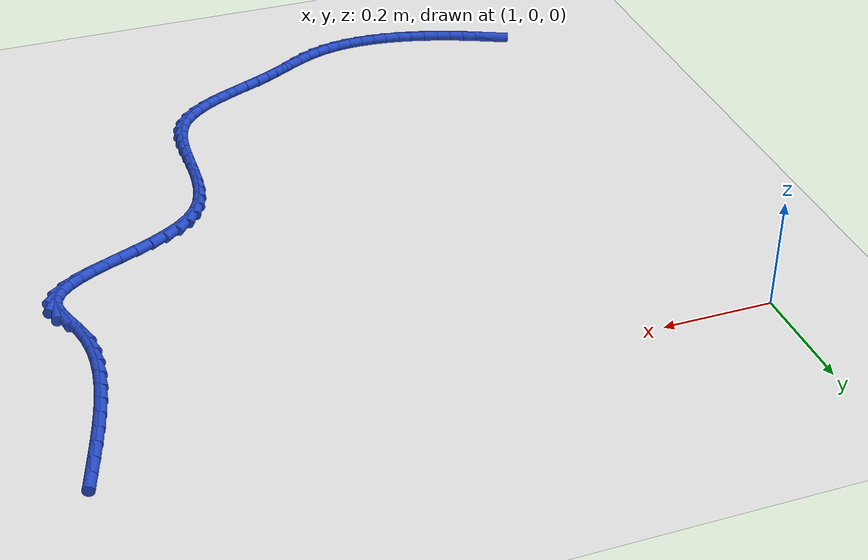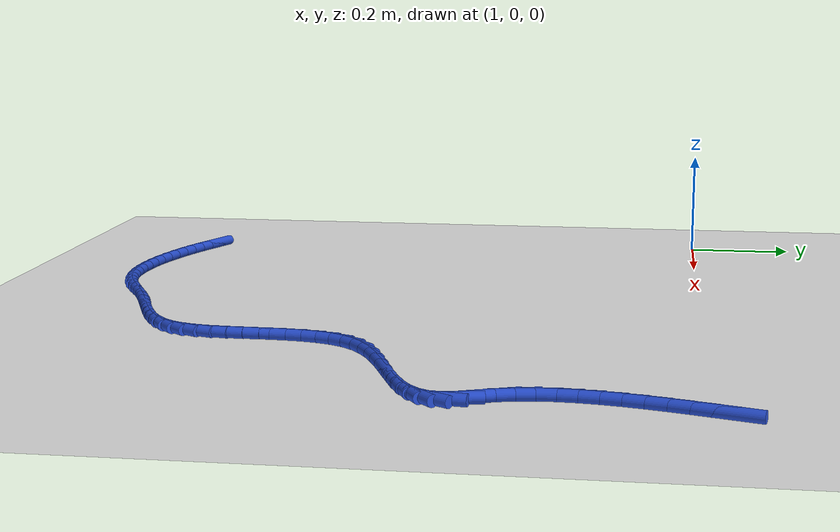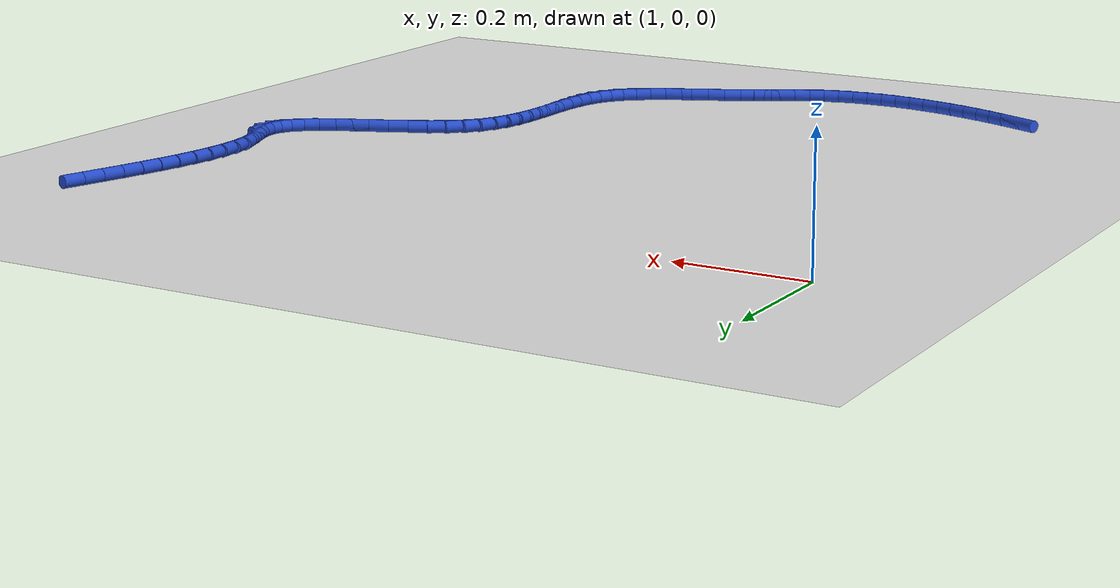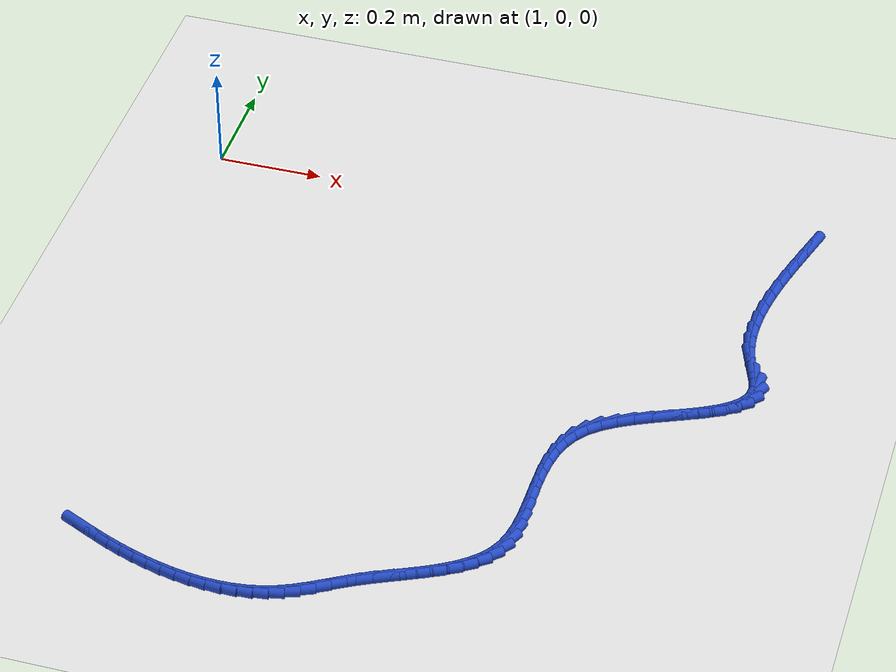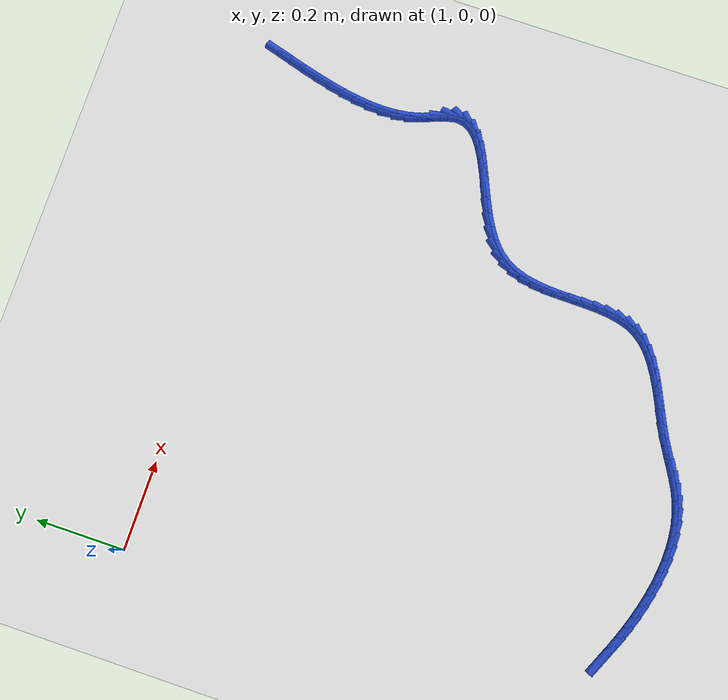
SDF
<sdf version="1.6">
 <world name="default">
  <model name="ground_plane">
   <static>1</static>
   <link name="link">
    <collision name="collision">
     <geometry><plane><normal>0 0 1</normal><size>100 100</size></plane></geometry>
     <surface><friction><ode><mu>100</mu><mu2>50</mu2></ode></friction></surface>
    </collision>
    <visual name="visual">
     <cast_shadows>0</cast_shadows>
     <geometry><plane><normal>0 0 1</normal><size>100 100</size></plane></geometry>
     <material>
      <script><uri>file://media/materials/scripts/gazebo.material</uri><name>Gazebo/WhiteGlow</name></script>
     </material>
    </visual>
   </link>
  </model>
  <model name="line">
   <link name="link_140">
    <pose>2.1512946594606426 0.04463991699922791 0.01 0 1.57 1.2854217410244717</pose>
    <collision name="collision">
     <geometry><cylinder><radius>0.01</radius><length>0.08</length></cylinder></geometry>
    </collision>
    <visual name="visual">
     <material>
      <script><name>Gazebo/Blue</name><uri>file://media/materials/scripts/gazebo.material</uri></script>
     </material>
     <geometry><cylinder><radius>0.01</radius><length>0.08</length></cylinder></geometry>
    </visual>
   </link>
   <link name="link_141">
    <pose>2.1420892921668107 0.013263229990158755 0.01 0 1.57 1.2914863683601279</pose>
    <collision name="collision">
     <geometry><cylinder><radius>0.01</radius><length>0.08</length></cylinder></geometry>
    </collision>
    <visual name="visual">
     <material>
      <script><name>Gazebo/Blue</name><uri>file://media/materials/scripts/gazebo.material</uri></script>
     </material>
     <geometry><cylinder><radius>0.01</radius><length>0.08</length></cylinder></geometry>
    </visual>
   </link>
   <link name="link_142">
    <pose>2.1329368277943024 -0.01864830781299917 0.01 0 1.57 1.3060352800422335</pose>
    <collision name="collision">
     <geometry><cylinder><radius>0.01</radius><length>0.08</length></cylinder></geometry>
    </collision>
    <visual name="visual">
     <material>
      <script><name>Gazebo/Blue</name><uri>file://media/materials/scripts/gazebo.material</uri></script>
     </material>
     <geometry><cylinder><radius>0.01</radius><length>0.08</length></cylinder></geometry>
    </visual>
   </link>
   <link name="link_143">
    <pose>2.124189321901578 -0.050911924253753876 0.01 0 1.57 1.3292372556038345</pose>
    <collision name="collision">
     <geometry><cylinder><radius>0.01</radius><length>0.08</length></cylinder></geometry>
    </collision>
    <visual name="visual">
     <material>
      <script><name>Gazebo/Blue</name><uri>file://media/materials/scripts/gazebo.material</uri></script>
     </material>
     <geometry><cylinder><radius>0.01</radius><length>0.08</length></cylinder></geometry>
    </visual>
   </link>
   <link name="link_144">
    <pose>2.1161988300471006 -0.08334484717560955 0.01 0 1.57 1.3616385609507633</pose>
    <collision name="collision">
     <geometry><cylinder><radius>0.01</radius><length>0.08</length></cylinder></geometry>
    </collision>
    <visual name="visual">
     <material>
      <script><name>Gazebo/Blue</name><uri>file://media/materials/scripts/gazebo.material</uri></script>
     </material>
     <geometry><cylinder><radius>0.01</radius><length>0.08</length></cylinder></geometry>
    </visual>
   </link>
   <link name="link_145">
    <pose>2.1093174077893297 -0.11576430442207436 0.01 0 1.57 1.4041455183835767</pose>
    <collision name="collision">
     <geometry><cylinder><radius>0.01</radius><length>0.08</length></cylinder></geometry>
    </collision>
    <visual name="visual">
     <material>
      <script><name>Gazebo/Blue</name><uri>file://media/materials/scripts/gazebo.material</uri></script>
     </material>
     <geometry><cylinder><radius>0.01</radius><length>0.08</length></cylinder></geometry>
    </visual>
   </link>
   <link name="link_146">
    <pose>2.1038971106867295 -0.14798752383665253 0.01 0 1.57 1.4580032460411385</pose>
    <collision name="collision">
     <geometry><cylinder><radius>0.01</radius><length>0.08</length></cylinder></geometry>
    </collision>
    <visual name="visual">
     <material>
      <script><name>Gazebo/Blue</name><uri>file://media/materials/scripts/gazebo.material</uri></script>
     </material>
     <geometry><cylinder><radius>0.01</radius><length>0.08</length></cylinder></geometry>
    </visual>
   </link>
   <link name="link_147">
    <pose>2.100289994297759 -0.17983173326285207 0.01 0 1.57 1.524736591388345</pose>
    <collision name="collision">
     <geometry><cylinder><radius>0.01</radius><length>0.08</length></cylinder></geometry>
    </collision>
    <visual name="visual">
     <material>
      <script><name>Gazebo/Blue</name><uri>file://media/materials/scripts/gazebo.material</uri></script>
     </material>
     <geometry><cylinder><radius>0.01</radius><length>0.08</length></cylinder></geometry>
    </visual>
   </link>
   <link name="link_148">
    <pose>2.098848114180881 -0.21111416054417728 0.01 0 1.57 -1.5355952016244374</pose>
    <collision name="collision">
     <geometry><cylinder><radius>0.01</radius><length>0.08</length></cylinder></geometry>
    </collision>
    <visual name="visual">
     <material>
      <script><name>Gazebo/Blue</name><uri>file://media/materials/scripts/gazebo.material</uri></script>
     </material>
     <geometry><cylinder><radius>0.01</radius><length>0.08</length></cylinder></geometry>
    </visual>
   </link>
   <link name="link_149">
    <pose>2.099923525894558 -0.24165203352413625 0.01 0 1.57 -1.4383547530310288</pose>
    <collision name="collision">
     <geometry><cylinder><radius>0.01</radius><length>0.08</length></cylinder></geometry>
    </collision>
    <visual name="visual">
     <material>
      <script><name>Gazebo/Blue</name><uri>file://media/materials/scripts/gazebo.material</uri></script>
     </material>
     <geometry><cylinder><radius>0.01</radius><length>0.08</length></cylinder></geometry>
    </visual>
   </link>
   <link name="link_150">
    <pose>2.10386828499725 -0.2712625800462332 0.01 0 1.57 -1.3244635552762716</pose>
    <collision name="collision">
     <geometry><cylinder><radius>0.01</radius><length>0.08</length></cylinder></geometry>
    </collision>
    <visual name="visual">
     <material>
      <script><name>Gazebo/Blue</name><uri>file://media/materials/scripts/gazebo.material</uri></script>
     </material>
     <geometry><cylinder><radius>0.01</radius><length>0.08</length></cylinder></geometry>
    </visual>
   </link>
   <link name="link_151">
    <pose>2.1110344149685583 -0.2997630253458558 0.01 0 1.57 -1.220101557926677</pose>
    <collision name="collision">
     <geometry><cylinder><radius>0.01</radius><length>0.08</length></cylinder></geometry>
    </collision>
    <visual name="visual">
     <material>
      <script><name>Gazebo/Blue</name><uri>file://media/materials/scripts/gazebo.material</uri></script>
     </material>
     <geometry><cylinder><radius>0.01</radius><length>0.08</length></cylinder></geometry>
    </visual>
   </link>
   <link name="link_152">
    <pose>2.120963269181347 -0.32690468444605636 0.01 0 1.57 -1.2179618314988134</pose>
    <collision name="collision">
     <geometry><cylinder><radius>0.01</radius><length>0.08</length></cylinder></geometry>
    </collision>
    <visual name="visual">
     <material>
      <script><name>Gazebo/Blue</name><uri>file://media/materials/scripts/gazebo.material</uri></script>
     </material>
     <geometry><cylinder><radius>0.01</radius><length>0.08</length></cylinder></geometry>
    </visual>
   </link>
   <link name="link_153">
    <pose>2.130278733484522 -0.35220167242580597 0.01 0 1.57 -1.369696151511388</pose>
    <collision name="collision">
     <geometry><cylinder><radius>0.01</radius><length>0.08</length></cylinder></geometry>
    </collision>
    <visual name="visual">
     <material>
      <script><name>Gazebo/Blue</name><uri>file://media/materials/scripts/gazebo.material</uri></script>
     </material>
     <geometry><cylinder><radius>0.01</radius><length>0.08</length></cylinder></geometry>
    </visual>
   </link>
   <link name="link_154">
    <pose>2.1349497410814227 -0.3751149791539706 0.01 0 1.57 1.4309030198468533</pose>
    <collision name="collision">
     <geometry><cylinder><radius>0.01</radius><length>0.08</length></cylinder></geometry>
    </collision>
    <visual name="visual">
     <material>
      <script><name>Gazebo/Blue</name><uri>file://media/materials/scripts/gazebo.material</uri></script>
     </material>
     <geometry><cylinder><radius>0.01</radius><length>0.08</length></cylinder></geometry>
    </visual>
   </link>
   <link name="link_155">
    <pose>2.1321033700283607 -0.3953288041530559 0.01 0 1.57 1.064689596024662</pose>
    <collision name="collision">
     <geometry><cylinder><radius>0.01</radius><length>0.08</length></cylinder></geometry>
    </collision>
    <visual name="visual">
     <material>
      <script><name>Gazebo/Blue</name><uri>file://media/materials/scripts/gazebo.material</uri></script>
     </material>
     <geometry><cylinder><radius>0.01</radius><length>0.08</length></cylinder></geometry>
    </visual>
   </link>
   <link name="link_156">
    <pose>2.1222134276488713 -0.413172363221949 0.01 0 1.57 0.7872740312805666</pose>
    <collision name="collision">
     <geometry><cylinder><radius>0.01</radius><length>0.08</length></cylinder></geometry>
    </collision>
    <visual name="visual">
     <material>
      <script><name>Gazebo/Blue</name><uri>file://media/materials/scripts/gazebo.material</uri></script>
     </material>
     <geometry><cylinder><radius>0.01</radius><length>0.08</length></cylinder></geometry>
    </visual>
   </link>
   <link name="link_157">
    <pose>2.1063547012702872 -0.42909069924122484 0.01 0 1.57 0.6078500190412695</pose>
    <collision name="collision">
     <geometry><cylinder><radius>0.01</radius><length>0.08</length></cylinder></geometry>
    </collision>
    <visual name="visual">
     <material>
      <script><name>Gazebo/Blue</name><uri>file://media/materials/scripts/gazebo.material</uri></script>
     </material>
     <geometry><cylinder><radius>0.01</radius><length>0.08</length></cylinder></geometry>
    </visual>
   </link>
   <link name="link_158">
    <pose>2.0856019782199433 -0.4435288550914602 0.01 0 1.57 0.4993513118365174</pose>
    <collision name="collision">
     <geometry><cylinder><radius>0.01</radius><length>0.08</length></cylinder></geometry>
    </collision>
    <visual name="visual">
     <material>
      <script><name>Gazebo/Blue</name><uri>file://media/materials/scripts/gazebo.material</uri></script>
     </material>
     <geometry><cylinder><radius>0.01</radius><length>0.08</length></cylinder></geometry>
    </visual>
   </link>
   <link name="link_159">
    <pose>2.0610300458251722 -0.45693187365323024 0.01 0 1.57 0.4385881329730807</pose>
    <collision name="collision">
     <geometry><cylinder><radius>0.01</radius><length>0.08</length></cylinder></geometry>
    </collision>
    <visual name="visual">
     <material>
      <script><name>Gazebo/Blue</name><uri>file://media/materials/scripts/gazebo.material</uri></script>
     </material>
     <geometry><cylinder><radius>0.01</radius><length>0.08</length></cylinder></geometry>
    </visual>
   </link>
   <link name="link_160">
    <pose>2.0337136914133094 -0.46974479780711126 0.01 0 1.57 0.4120195260210417</pose>
    <collision name="collision">
     <geometry><cylinder><radius>0.01</radius><length>0.08</length></cylinder></geometry>
    </collision>
    <visual name="visual">
     <material>
      <script><name>Gazebo/Blue</name><uri>file://media/materials/scripts/gazebo.material</uri></script>
     </material>
     <geometry><cylinder><radius>0.01</radius><length>0.08</length></cylinder></geometry>
    </visual>
   </link>
   <link name="link_161">
    <pose>2.004727702311686 -0.4824126704336794 0.01 0 1.57 0.41315497599792655</pose>
    <collision name="collision">
     <geometry><cylinder><radius>0.01</radius><length>0.08</length></cylinder></geometry>
    </collision>
    <visual name="visual">
     <material>
      <script><name>Gazebo/Blue</name><uri>file://media/materials/scripts/gazebo.material</uri></script>
     </material>
     <geometry><cylinder><radius>0.01</radius><length>0.08</length></cylinder></geometry>
    </visual>
   </link>
   <link name="link_162">
    <pose>1.9751468658476377 -0.49538053441350993 0.01 0 1.57 0.4403589430026622</pose>
    <collision name="collision">
     <geometry><cylinder><radius>0.01</radius><length>0.08</length></cylinder></geometry>
    </collision>
    <visual name="visual">
     <material>
      <script><name>Gazebo/Blue</name><uri>file://media/materials/scripts/gazebo.material</uri></script>
     </material>
     <geometry><cylinder><radius>0.01</radius><length>0.08</length></cylinder></geometry>
    </visual>
   </link>
   <link name="link_163">
    <pose>1.946045969348498 -0.5090934326271798 0.01 0 1.57 0.49592115263891684</pose>
    <collision name="collision">
     <geometry><cylinder><radius>0.01</radius><length>0.08</length></cylinder></geometry>
    </collision>
    <visual name="visual">
     <material>
      <script><name>Gazebo/Blue</name><uri>file://media/materials/scripts/gazebo.material</uri></script>
     </material>
     <geometry><cylinder><radius>0.01</radius><length>0.08</length></cylinder></geometry>
    </visual>
   </link>
   <link name="link_164">
    <pose>1.9184998001416007 -0.5239964079552639 0.01 0 1.57 0.5859713440132835</pose>
    <collision name="collision">
     <geometry><cylinder><radius>0.01</radius><length>0.08</length></cylinder></geometry>
    </collision>
    <visual name="visual">
     <material>
      <script><name>Gazebo/Blue</name><uri>file://media/materials/scripts/gazebo.material</uri></script>
     </material>
     <geometry><cylinder><radius>0.01</radius><length>0.08</length></cylinder></geometry>
    </visual>
   </link>
   <link name="link_165">
    <pose>1.893583145554279 -0.5405345032783391 0.01 0 1.57 0.7203618528075638</pose>
    <collision name="collision">
     <geometry><cylinder><radius>0.01</radius><length>0.08</length></cylinder></geometry>
    </collision>
    <visual name="visual">
     <material>
      <script><name>Gazebo/Blue</name><uri>file://media/materials/scripts/gazebo.material</uri></script>
     </material>
     <geometry><cylinder><radius>0.01</radius><length>0.08</length></cylinder></geometry>
    </visual>
   </link>
   <link name="link_166">
    <pose>1.8723707929138675 -0.5591527614769802 0.01 0 1.57 0.9048471861715196</pose>
    <collision name="collision">
     <geometry><cylinder><radius>0.01</radius><length>0.08</length></cylinder></geometry>
    </collision>
    <visual name="visual">
     <material>
      <script><name>Gazebo/Blue</name><uri>file://media/materials/scripts/gazebo.material</uri></script>
     </material>
     <geometry><cylinder><radius>0.01</radius><length>0.08</length></cylinder></geometry>
    </visual>
   </link>
   <link name="link_167">
    <pose>1.8558075252563233 -0.5802341560315187 0.01 0 1.57 1.0942951834859498</pose>
    <collision name="collision">
     <geometry><cylinder><radius>0.01</radius><length>0.08</length></cylinder></geometry>
    </collision>
    <visual name="visual">
     <material>
      <script><name>Gazebo/Blue</name><uri>file://media/materials/scripts/gazebo.material</uri></script>
     </material>
     <geometry><cylinder><radius>0.01</radius><length>0.08</length></cylinder></geometry>
    </visual>
   </link>
   <link name="link_168">
    <pose>1.8437299293669782 -0.6036325619140496 0.01 0 1.57 1.2532359510099278</pose>
    <collision name="collision">
     <geometry><cylinder><radius>0.01</radius><length>0.08</length></cylinder></geometry>
    </collision>
    <visual name="visual">
     <material>
      <script><name>Gazebo/Blue</name><uri>file://media/materials/scripts/gazebo.material</uri></script>
     </material>
     <geometry><cylinder><radius>0.01</radius><length>0.08</length></cylinder></geometry>
    </visual>
   </link>
   <link name="link_169">
    <pose>1.8354137261297687 -0.6289340736276618 0.01 0 1.57 1.3760685229605352</pose>
    <collision name="collision">
     <geometry><cylinder><radius>0.01</radius><length>0.08</length></cylinder></geometry>
    </collision>
    <visual name="visual">
     <material>
      <script><name>Gazebo/Blue</name><uri>file://media/materials/scripts/gazebo.material</uri></script>
     </material>
     <geometry><cylinder><radius>0.01</radius><length>0.08</length></cylinder></geometry>
    </visual>
   </link>
   <link name="link_170">
    <pose>1.8301302840261384 -0.6557227076593267 0.01 0 1.57 1.4642616256289547</pose>
    <collision name="collision">
     <geometry><cylinder><radius>0.01</radius><length>0.08</length></cylinder></geometry>
    </collision>
    <visual name="visual">
     <material>
      <script><name>Gazebo/Blue</name><uri>file://media/materials/scripts/gazebo.material</uri></script>
     </material>
     <geometry><cylinder><radius>0.01</radius><length>0.08</length></cylinder></geometry>
    </visual>
   </link>
   <link name="link_171">
    <pose>1.8271509715375287 -0.6835824804960174 0.01 0 1.57 1.5216051837858293</pose>
    <collision name="collision">
     <geometry><cylinder><radius>0.01</radius><length>0.08</length></cylinder></geometry>
    </collision>
    <visual name="visual">
     <material>
      <script><name>Gazebo/Blue</name><uri>file://media/materials/scripts/gazebo.material</uri></script>
     </material>
     <geometry><cylinder><radius>0.01</radius><length>0.08</length></cylinder></geometry>
    </visual>
   </link>
   <link name="link_172">
    <pose>1.825747157145382 -0.7120974086247074 0.01 0 1.57 1.5514294128087383</pose>
    <collision name="collision">
     <geometry><cylinder><radius>0.01</radius><length>0.08</length></cylinder></geometry>
    </collision>
    <visual name="visual">
     <material>
      <script><name>Gazebo/Blue</name><uri>file://media/materials/scripts/gazebo.material</uri></script>
     </material>
     <geometry><cylinder><radius>0.01</radius><length>0.08</length></cylinder></geometry>
    </visual>
   </link>
   <link name="link_173">
    <pose>1.8251902093311416 -0.740851508532368 0.01 0 1.57 1.555445734668625</pose>
    <collision name="collision">
     <geometry><cylinder><radius>0.01</radius><length>0.08</length></cylinder></geometry>
    </collision>
    <visual name="visual">
     <material>
      <script><name>Gazebo/Blue</name><uri>file://media/materials/scripts/gazebo.material</uri></script>
     </material>
     <geometry><cylinder><radius>0.01</radius><length>0.08</length></cylinder></geometry>
    </visual>
   </link>
   <link name="link_174">
    <pose>1.8247514965762486 -0.769428796705973 0.01 0 1.57 1.5333249260891364</pose>
    <collision name="collision">
     <geometry><cylinder><radius>0.01</radius><length>0.08</length></cylinder></geometry>
    </collision>
    <visual name="visual">
     <material>
      <script><name>Gazebo/Blue</name><uri>file://media/materials/scripts/gazebo.material</uri></script>
     </material>
     <geometry><cylinder><radius>0.01</radius><length>0.08</length></cylinder></geometry>
    </visual>
   </link>
   <link name="link_175">
    <pose>1.8237023873621467 -0.7974132896324939 0.01 0 1.57 1.4824973696532342</pose>
    <collision name="collision">
     <geometry><cylinder><radius>0.01</radius><length>0.08</length></cylinder></geometry>
    </collision>
    <visual name="visual">
     <material>
      <script><name>Gazebo/Blue</name><uri>file://media/materials/scripts/gazebo.material</uri></script>
     </material>
     <geometry><cylinder><radius>0.01</radius><length>0.08</length></cylinder></geometry>
    </visual>
   </link>
   <link name="link_176">
    <pose>1.8213142501702781 -0.8243890037989049 0.01 0 1.57 1.3981438797259222</pose>
    <collision name="collision">
     <geometry><cylinder><radius>0.01</radius><length>0.08</length></cylinder></geometry>
    </collision>
    <visual name="visual">
     <material>
      <script><name>Gazebo/Blue</name><uri>file://media/materials/scripts/gazebo.material</uri></script>
     </material>
     <geometry><cylinder><radius>0.01</radius><length>0.08</length></cylinder></geometry>
    </visual>
   </link>
   <link name="link_177">
    <pose>1.8168584534820837 -0.8499399556921764 0.01 0 1.57 1.273968851861448</pose>
    <collision name="collision">
     <geometry><cylinder><radius>0.01</radius><length>0.08</length></cylinder></geometry>
    </collision>
    <visual name="visual">
     <material>
      <script><name>Gazebo/Blue</name><uri>file://media/materials/scripts/gazebo.material</uri></script>
     </material>
     <geometry><cylinder><radius>0.01</radius><length>0.08</length></cylinder></geometry>
    </visual>
   </link>
   <link name="link_178">
    <pose>1.809606365779008 -0.8736501617992835 0.01 0 1.57 1.1054057954325456</pose>
    <collision name="collision">
     <geometry><cylinder><radius>0.01</radius><length>0.08</length></cylinder></geometry>
    </collision>
    <visual name="visual">
     <material>
      <script><name>Gazebo/Blue</name><uri>file://media/materials/scripts/gazebo.material</uri></script>
     </material>
     <geometry><cylinder><radius>0.01</radius><length>0.08</length></cylinder></geometry>
    </visual>
   </link>
   <link name="link_179">
    <pose>1.7988320330234795 -0.8951052592518653 0.01 0 1.57 0.9153593266305816</pose>
    <collision name="collision">
     <geometry><cylinder><radius>0.01</radius><length>0.08</length></cylinder></geometry>
    </collision>
    <visual name="visual">
     <material>
      <script><name>Gazebo/Blue</name><uri>file://media/materials/scripts/gazebo.material</uri></script>
     </material>
     <geometry><cylinder><radius>0.01</radius><length>0.08</length></cylinder></geometry>
    </visual>
   </link>
   <link name="link_180">
    <pose>1.7842051606420015 -0.914130372746253 0.01 0 1.57 0.754225795417612</pose>
    <collision name="collision">
     <geometry><cylinder><radius>0.01</radius><length>0.08</length></cylinder></geometry>
    </collision>
    <visual name="visual">
     <material>
      <script><name>Gazebo/Blue</name><uri>file://media/materials/scripts/gazebo.material</uri></script>
     </material>
     <geometry><cylinder><radius>0.01</radius><length>0.08</length></cylinder></geometry>
    </visual>
   </link>
   <link name="link_181">
    <pose>1.7662058195605614 -0.9310411307518411 0.01 0 1.57 0.6303760971769009</pose>
    <collision name="collision">
     <geometry><cylinder><radius>0.01</radius><length>0.08</length></cylinder></geometry>
    </collision>
    <visual name="visual">
     <material>
      <script><name>Gazebo/Blue</name><uri>file://media/materials/scripts/gazebo.material</uri></script>
     </material>
     <geometry><cylinder><radius>0.01</radius><length>0.08</length></cylinder></geometry>
    </visual>
   </link>
   <link name="link_182">
    <pose>1.7454133191764867 -0.9462132295033221 0.01 0 1.57 0.5405896903198741</pose>
    <collision name="collision">
     <geometry><cylinder><radius>0.01</radius><length>0.08</length></cylinder></geometry>
    </collision>
    <visual name="visual">
     <material>
      <script><name>Gazebo/Blue</name><uri>file://media/materials/scripts/gazebo.material</uri></script>
     </material>
     <geometry><cylinder><radius>0.01</radius><length>0.08</length></cylinder></geometry>
    </visual>
   </link>
   <link name="link_183">
    <pose>1.7224069688871038 -0.9600223652353875 0.01 0 1.57 0.4797941629617227</pose>
    <collision name="collision">
     <geometry><cylinder><radius>0.01</radius><length>0.08</length></cylinder></geometry>
    </collision>
    <visual name="visual">
     <material>
      <script><name>Gazebo/Blue</name><uri>file://media/materials/scripts/gazebo.material</uri></script>
     </material>
     <geometry><cylinder><radius>0.01</radius><length>0.08</length></cylinder></geometry>
    </visual>
   </link>
   <link name="link_184">
    <pose>1.6977660780897423 -0.9728442341827285 0.01 0 1.57 0.44359567223882956</pose>
    <collision name="collision">
     <geometry><cylinder><radius>0.01</radius><length>0.08</length></cylinder></geometry>
    </collision>
    <visual name="visual">
     <material>
      <script><name>Gazebo/Blue</name><uri>file://media/materials/scripts/gazebo.material</uri></script>
     </material>
     <geometry><cylinder><radius>0.01</radius><length>0.08</length></cylinder></geometry>
    </visual>
   </link>
   <link name="link_185">
    <pose>1.6720699561817287 -0.9850545325800373 0.01 0 1.57 0.42909595901084074</pose>
    <collision name="collision">
     <geometry><cylinder><radius>0.01</radius><length>0.08</length></cylinder></geometry>
    </collision>
    <visual name="visual">
     <material>
      <script><name>Gazebo/Blue</name><uri>file://media/materials/scripts/gazebo.material</uri></script>
     </material>
     <geometry><cylinder><radius>0.01</radius><length>0.08</length></cylinder></geometry>
    </visual>
   </link>
   <link name="link_186">
    <pose>1.6458979125603919 -0.9970289566620043 0.01 0 1.57 0.4350154464180825</pose>
    <collision name="collision">
     <geometry><cylinder><radius>0.01</radius><length>0.08</length></cylinder></geometry>
    </collision>
    <visual name="visual">
     <material>
      <script><name>Gazebo/Blue</name><uri>file://media/materials/scripts/gazebo.material</uri></script>
     </material>
     <geometry><cylinder><radius>0.01</radius><length>0.08</length></cylinder></geometry>
    </visual>
   </link>
   <link name="link_187">
    <pose>1.6198292566230577 -1.0091432026633222 0.01 0 1.57 0.46165349190525645</pose>
    <collision name="collision">
     <geometry><cylinder><radius>0.01</radius><length>0.08</length></cylinder></geometry>
    </collision>
    <visual name="visual">
     <material>
      <script><name>Gazebo/Blue</name><uri>file://media/materials/scripts/gazebo.material</uri></script>
     </material>
     <geometry><cylinder><radius>0.01</radius><length>0.08</length></cylinder></geometry>
    </visual>
   </link>
   <link name="link_188">
    <pose>1.5944432977670566 -1.0217729668186817 0.01 0 1.57 0.5024336820540896</pose>
    <collision name="collision">
     <geometry><cylinder><radius>0.01</radius><length>0.08</length></cylinder></geometry>
    </collision>
    <visual name="visual">
     <material>
      <script><name>Gazebo/Blue</name><uri>file://media/materials/scripts/gazebo.material</uri></script>
     </material>
     <geometry><cylinder><radius>0.01</radius><length>0.08</length></cylinder></geometry>
    </visual>
   </link>
   <link name="link_189">
    <pose>1.5701529749615102 -1.0351196905446611 0.01 0 1.57 0.5236408243400821</pose>
    <collision name="collision">
     <geometry><cylinder><radius>0.01</radius><length>0.08</length></cylinder></geometry>
    </collision>
    <visual name="visual">
     <material>
      <script><name>Gazebo/Blue</name><uri>file://media/materials/scripts/gazebo.material</uri></script>
     </material>
     <geometry><cylinder><radius>0.01</radius><length>0.08</length></cylinder></geometry>
    </visual>
   </link>
   <link name="link_190">
    <pose>1.5466875729901504 -1.0486687623089128 0.01 0 1.57 0.5145780134689439</pose>
    <collision name="collision">
     <geometry><cylinder><radius>0.01</radius><length>0.08</length></cylinder></geometry>
    </collision>
    <visual name="visual">
     <material>
      <script><name>Gazebo/Blue</name><uri>file://media/materials/scripts/gazebo.material</uri></script>
     </material>
     <geometry><cylinder><radius>0.01</radius><length>0.08</length></cylinder></geometry>
    </visual>
   </link>
   <link name="link_191">
    <pose>1.5236007965971659 -1.0617216697008844 0.01 0 1.57 0.47330937752205327</pose>
    <collision name="collision">
     <geometry><cylinder><radius>0.01</radius><length>0.08</length></cylinder></geometry>
    </collision>
    <visual name="visual">
     <material>
      <script><name>Gazebo/Blue</name><uri>file://media/materials/scripts/gazebo.material</uri></script>
     </material>
     <geometry><cylinder><radius>0.01</radius><length>0.08</length></cylinder></geometry>
    </visual>
   </link>
   <link name="link_192">
    <pose>1.5004463504029701 -1.0735799001803765 0.01 0 1.57 0.39850087805968515</pose>
    <collision name="collision">
     <geometry><cylinder><radius>0.01</radius><length>0.08</length></cylinder></geometry>
    </collision>
    <visual name="visual">
     <material>
      <script><name>Gazebo/Blue</name><uri>file://media/materials/scripts/gazebo.material</uri></script>
     </material>
     <geometry><cylinder><radius>0.01</radius><length>0.08</length></cylinder></geometry>
    </visual>
   </link>
   <link name="link_193">
    <pose>1.4767779416129767 -1.083544945022212 0.01 0 1.57 0.29791476372066816</pose>
    <collision name="collision">
     <geometry><cylinder><radius>0.01</radius><length>0.08</length></cylinder></geometry>
    </collision>
    <visual name="visual">
     <material>
      <script><name>Gazebo/Blue</name><uri>file://media/materials/scripts/gazebo.material</uri></script>
     </material>
     <geometry><cylinder><radius>0.01</radius><length>0.08</length></cylinder></geometry>
    </visual>
   </link>
   <link name="link_194">
    <pose>1.4522552594943525 -1.0910747068802393 0.01 0 1.57 0.19961656154696397</pose>
    <collision name="collision">
     <geometry><cylinder><radius>0.01</radius><length>0.08</length></cylinder></geometry>
    </collision>
    <visual name="visual">
     <material>
      <script><name>Gazebo/Blue</name><uri>file://media/materials/scripts/gazebo.material</uri></script>
     </material>
     <geometry><cylinder><radius>0.01</radius><length>0.08</length></cylinder></geometry>
    </visual>
   </link>
   <link name="link_195">
    <pose>1.4269256255420861 -1.0961991672139524 0.01 0 1.57 0.11031278155078118</pose>
    <collision name="collision">
     <geometry><cylinder><radius>0.01</radius><length>0.08</length></cylinder></geometry>
    </collision>
    <visual name="visual">
     <material>
      <script><name>Gazebo/Blue</name><uri>file://media/materials/scripts/gazebo.material</uri></script>
     </material>
     <geometry><cylinder><radius>0.01</radius><length>0.08</length></cylinder></geometry>
    </visual>
   </link>
   <link name="link_196">
    <pose>1.400924960067691 -1.0990790641679298 0.01 0 1.57 0.02999094530296755</pose>
    <collision name="collision">
     <geometry><cylinder><radius>0.01</radius><length>0.08</length></cylinder></geometry>
    </collision>
    <visual name="visual">
     <material>
      <script><name>Gazebo/Blue</name><uri>file://media/materials/scripts/gazebo.material</uri></script>
     </material>
     <geometry><cylinder><radius>0.01</radius><length>0.08</length></cylinder></geometry>
    </visual>
   </link>
   <link name="link_197">
    <pose>1.3743891833826836 -1.0998751358867485 0.01 0 1.57 -0.04181769838442131</pose>
    <collision name="collision">
     <geometry><cylinder><radius>0.01</radius><length>0.08</length></cylinder></geometry>
    </collision>
    <visual name="visual">
     <material>
      <script><name>Gazebo/Blue</name><uri>file://media/materials/scripts/gazebo.material</uri></script>
     </material>
     <geometry><cylinder><radius>0.01</radius><length>0.08</length></cylinder></geometry>
    </visual>
   </link>
   <link name="link_198">
    <pose>1.347454215798577 -1.0987481205149865 0.01 0 1.57 -0.10583656000033516</pose>
    <collision name="collision">
     <geometry><cylinder><radius>0.01</radius><length>0.08</length></cylinder></geometry>
    </collision>
    <visual name="visual">
     <material>
      <script><name>Gazebo/Blue</name><uri>file://media/materials/scripts/gazebo.material</uri></script>
     </material>
     <geometry><cylinder><radius>0.01</radius><length>0.08</length></cylinder></geometry>
    </visual>
   </link>
   <link name="link_199">
    <pose>1.3202559776268883 -1.0958587561972217 0.01 0 1.57 -0.16289430237581368</pose>
    <collision name="collision">
     <geometry><cylinder><radius>0.01</radius><length>0.08</length></cylinder></geometry>
    </collision>
    <visual name="visual">
     <material>
      <script><name>Gazebo/Blue</name><uri>file://media/materials/scripts/gazebo.material</uri></script>
     </material>
     <geometry><cylinder><radius>0.01</radius><length>0.08</length></cylinder></geometry>
    </visual>
   </link>
   <link name="link_200">
    <pose>1.2929303891791302 -1.0913677810780313 0.01 0 1.57 -0.21382876159964057</pose>
    <collision name="collision">
     <geometry><cylinder><radius>0.01</radius><length>0.08</length></cylinder></geometry>
    </collision>
    <visual name="visual">
     <material>
      <script><name>Gazebo/Blue</name><uri>file://media/materials/scripts/gazebo.material</uri></script>
     </material>
     <geometry><cylinder><radius>0.01</radius><length>0.08</length></cylinder></geometry>
    </visual>
   </link>
   <link name="link_201">
    <pose>1.2656133707668196 -1.0854359333019936 0.01 0 1.57 -0.2594329697029087</pose>
    <collision name="collision">
     <geometry><cylinder><radius>0.01</radius><length>0.08</length></cylinder></geometry>
    </collision>
    <visual name="visual">
     <material>
      <script><name>Gazebo/Blue</name><uri>file://media/materials/scripts/gazebo.material</uri></script>
     </material>
     <geometry><cylinder><radius>0.01</radius><length>0.08</length></cylinder></geometry>
    </visual>
   </link>
   <link name="link_202">
    <pose>1.2384408427014695 -1.0782239510136857 0.01 0 1.57 -0.3004300036355208</pose>
    <collision name="collision">
     <geometry><cylinder><radius>0.01</radius><length>0.08</length></cylinder></geometry>
    </collision>
    <visual name="visual">
     <material>
      <script><name>Gazebo/Blue</name><uri>file://media/materials/scripts/gazebo.material</uri></script>
     </material>
     <geometry><cylinder><radius>0.01</radius><length>0.08</length></cylinder></geometry>
    </visual>
   </link>
   <link name="link_203">
    <pose>1.211548725294597 -1.069892572357686 0.01 0 1.57 -0.3374657294869334</pose>
    <collision name="collision">
     <geometry><cylinder><radius>0.01</radius><length>0.08</length></cylinder></geometry>
    </collision>
    <visual name="visual">
     <material>
      <script><name>Gazebo/Blue</name><uri>file://media/materials/scripts/gazebo.material</uri></script>
     </material>
     <geometry><cylinder><radius>0.01</radius><length>0.08</length></cylinder></geometry>
    </visual>
   </link>
   <link name="link_204">
    <pose>1.1850729388577155 -1.0606025354785715 0.01 0 1.57 -0.3711118220856858</pose>
    <collision name="collision">
     <geometry><cylinder><radius>0.01</radius><length>0.08</length></cylinder></geometry>
    </collision>
    <visual name="visual">
     <material>
      <script><name>Gazebo/Blue</name><uri>file://media/materials/scripts/gazebo.material</uri></script>
     </material>
     <geometry><cylinder><radius>0.01</radius><length>0.08</length></cylinder></geometry>
    </visual>
   </link>
   <link name="link_205">
    <pose>1.1591494037023398 -1.0505145785209202 0.01 0 1.57 -0.40187065317927323</pose>
    <collision name="collision">
     <geometry><cylinder><radius>0.01</radius><length>0.08</length></cylinder></geometry>
    </collision>
    <visual name="visual">
     <material>
      <script><name>Gazebo/Blue</name><uri>file://media/materials/scripts/gazebo.material</uri></script>
     </material>
     <geometry><cylinder><radius>0.01</radius><length>0.08</length></cylinder></geometry>
    </visual>
   </link>
   <link name="link_206">
    <pose>1.133913950196773 -1.0397895106100743 0.01 0 1.57 -0.42516571831231903</pose>
    <collision name="collision">
     <geometry><cylinder><radius>0.01</radius><length>0.08</length></cylinder></geometry>
    </collision>
    <visual name="visual">
     <material>
      <script><name>Gazebo/Blue</name><uri>file://media/materials/scripts/gazebo.material</uri></script>
     </material>
     <geometry><cylinder><radius>0.01</radius><length>0.08</length></cylinder></geometry>
    </visual>
   </link>
   <link name="link_207">
    <pose>1.1093830462628542 -1.028682338503206 0.01 0 1.57 -0.4256146560267117</pose>
    <collision name="collision">
     <geometry><cylinder><radius>0.01</radius><length>0.08</length></cylinder></geometry>
    </collision>
    <visual name="visual">
     <material>
      <script><name>Gazebo/Blue</name><uri>file://media/materials/scripts/gazebo.material</uri></script>
     </material>
     <geometry><cylinder><radius>0.01</radius><length>0.08</length></cylinder></geometry>
    </visual>
   </link>
  </model>
 </world>
</sdf>
